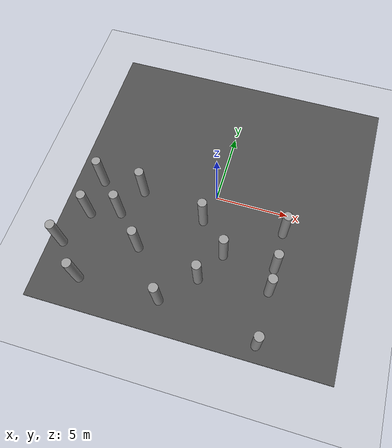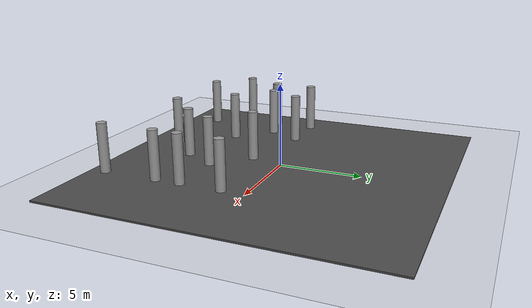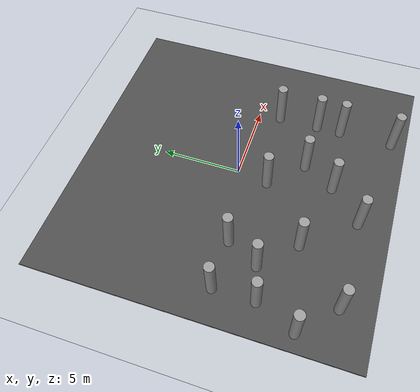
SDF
<sdf version="1.6">
 <world name="default">
  <model name="ground_plane">
   <static>1</static>
   <link name="link">
    <collision name="collision">
     <geometry><plane><normal>0 0 1</normal><size>100 100</size></plane></geometry>
     <surface><friction><ode><mu>100</mu><mu2>50</mu2></ode></friction></surface>
    </collision>
    <visual name="visual">
     <cast_shadows>0</cast_shadows>
     <geometry><plane><normal>0 0 1</normal><size>100 100</size></plane></geometry>
     <material>
      <script><uri>file://media/materials/scripts/gazebo.material</uri><name>Gazebo/Grey</name></script>
     </material>
    </visual>
   </link>
  </model>
  <model name="asphalt_plane">
   <static>1</static>
   <link name="link">
    <collision name="collision"><geometry><box><size>20 20 0.1</size></box></geometry></collision>
    <visual name="visual">
     <cast_shadows>0</cast_shadows>
     <geometry><box><size>20 20 0.1</size></box></geometry>
     <material>
      <script>
       <uri>model://asphalt_plane/materials/scripts</uri>
       <uri>model://asphalt_plane/materials/textures</uri>
       <name>vrc/asphalt</name>
      </script>
     </material>
    </visual>
   </link>
  </model>
  <model name="Untitled_clone_2">
   <link name="link_1">
    <inertial>
     <mass>1</mass>
     <inertia><ixx>0.145833</ixx><ixy>0</ixy><ixz>0</ixz><iyy>0.145833</iyy><iyz>0</iyz><izz>0.125</izz></inertia>
    </inertial>
    <visual name="visual">
     <geometry><cylinder><radius>0.3</radius><length>5</length></cylinder></geometry>
     <material>
      <lighting>1</lighting>
      <script><uri>file://media/materials/scripts/gazebo.material</uri><name>Gazebo/Grey</name></script>
      <shader type="pixel"><normal_map>__default__</normal_map></shader>
      <ambient>0.3 0.3 0.3 1</ambient>
      <diffuse>0.7 0.7 0.7 1</diffuse>
      <specular>0.01 0.01 0.01 1</specular>
      <emissive>0 0 0 1</emissive>
     </material>
    </visual>
    <collision name="collision">
     <geometry><cylinder><radius>0.5</radius><length>1</length></cylinder></geometry>
     <surface>
      <friction>
       <ode><mu>1</mu><mu2>1</mu2><fdir1>0 0 0</fdir1><slip1>0</slip1><slip2>0</slip2></ode>
       <torsional>
        <coefficient>1</coefficient>
        <patch_radius>0</patch_radius>
        <surface_radius>0</surface_radius>
        <use_patch_radius>1</use_patch_radius>
        <ode><slip>0</slip></ode>
       </torsional>
      </friction>
      <bounce><restitution_coefficient>0</restitution_coefficient><threshold>1e+06</threshold></bounce>
      <contact>
       <collide_without_contact>0</collide_without_contact>
       <collide_without_contact_bitmask>1</collide_without_contact_bitmask>
       <collide_bitmask>1</collide_bitmask>
       <ode>
        <soft_cfm>0</soft_cfm>
        <soft_erp>0.2</soft_erp>
        <kp>1e+13</kp>
        <kd>1</kd>
        <max_vel>0.01</max_vel>
        <min_depth>0</min_depth>
       </ode>
       <bullet>
        <split_impulse>1</split_impulse>
        <split_impulse_penetration_threshold>-0.01</split_impulse_penetration_threshold>
        <soft_cfm>0</soft_cfm>
        <soft_erp>0.2</soft_erp>
        <kp>1e+13</kp>
        <kd>1</kd>
       </bullet>
      </contact>
     </surface>
    </collision>
   </link>
   <static>0</static>
   <pose>4.99925 -1.41702 0.549996 1e-06 8e-06 0.013483</pose>
  </model>
  <model name="Untitled_clone_3">
   <link name="link_1">
    <inertial>
     <mass>1</mass>
     <inertia><ixx>0.145833</ixx><ixy>0</ixy><ixz>0</ixz><iyy>0.145833</iyy><iyz>0</iyz><izz>0.125</izz></inertia>
    </inertial>
    <visual name="visual">
     <geometry><cylinder><radius>0.3</radius><length>5</length></cylinder></geometry>
     <material>
      <lighting>1</lighting>
      <script><uri>file://media/materials/scripts/gazebo.material</uri><name>Gazebo/Grey</name></script>
      <shader type="pixel"><normal_map>__default__</normal_map></shader>
      <ambient>0.3 0.3 0.3 1</ambient>
      <diffuse>0.7 0.7 0.7 1</diffuse>
      <specular>0.01 0.01 0.01 1</specular>
      <emissive>0 0 0 1</emissive>
     </material>
    </visual>
    <collision name="collision">
     <geometry><cylinder><radius>0.5</radius><length>1</length></cylinder></geometry>
     <surface>
      <friction>
       <ode><mu>1</mu><mu2>1</mu2><fdir1>0 0 0</fdir1><slip1>0</slip1><slip2>0</slip2></ode>
       <torsional>
        <coefficient>1</coefficient>
        <patch_radius>0</patch_radius>
        <surface_radius>0</surface_radius>
        <use_patch_radius>1</use_patch_radius>
        <ode><slip>0</slip></ode>
       </torsional>
      </friction>
      <bounce><restitution_coefficient>0</restitution_coefficient><threshold>1e+06</threshold></bounce>
      <contact>
       <collide_without_contact>0</collide_without_contact>
       <collide_without_contact_bitmask>1</collide_without_contact_bitmask>
       <collide_bitmask>1</collide_bitmask>
       <ode>
        <soft_cfm>0</soft_cfm>
        <soft_erp>0.2</soft_erp>
        <kp>1e+13</kp>
        <kd>1</kd>
        <max_vel>0.01</max_vel>
        <min_depth>0</min_depth>
       </ode>
       <bullet>
        <split_impulse>1</split_impulse>
        <split_impulse_penetration_threshold>-0.01</split_impulse_penetration_threshold>
        <soft_cfm>0</soft_cfm>
        <soft_erp>0.2</soft_erp>
        <kp>1e+13</kp>
        <kd>1</kd>
       </bullet>
      </contact>
     </surface>
    </collision>
   </link>
   <static>0</static>
   <pose>-0.40703 -2.00042 0.549974 -3e-06 -6.9e-05 0.013907</pose>
  </model>
  <model name="Untitled_clone_4">
   <link name="link_1">
    <inertial>
     <mass>1</mass>
     <inertia><ixx>0.145833</ixx><ixy>0</ixy><ixz>0</ixz><iyy>0.145833</iyy><iyz>0</iyz><izz>0.125</izz></inertia>
    </inertial>
    <visual name="visual">
     <geometry><cylinder><radius>0.3</radius><length>5</length></cylinder></geometry>
     <material>
      <lighting>1</lighting>
      <script><uri>file://media/materials/scripts/gazebo.material</uri><name>Gazebo/Grey</name></script>
      <shader type="pixel"><normal_map>__default__</normal_map></shader>
      <ambient>0.3 0.3 0.3 1</ambient>
      <diffuse>0.7 0.7 0.7 1</diffuse>
      <specular>0.01 0.01 0.01 1</specular>
      <emissive>0 0 0 1</emissive>
     </material>
    </visual>
    <collision name="collision">
     <geometry><cylinder><radius>0.5</radius><length>1</length></cylinder></geometry>
     <surface>
      <friction>
       <ode><mu>1</mu><mu2>1</mu2><fdir1>0 0 0</fdir1><slip1>0</slip1><slip2>0</slip2></ode>
       <torsional>
        <coefficient>1</coefficient>
        <patch_radius>0</patch_radius>
        <surface_radius>0</surface_radius>
        <use_patch_radius>1</use_patch_radius>
        <ode><slip>0</slip></ode>
       </torsional>
      </friction>
      <bounce><restitution_coefficient>0</restitution_coefficient><threshold>1e+06</threshold></bounce>
      <contact>
       <collide_without_contact>0</collide_without_contact>
       <collide_without_contact_bitmask>1</collide_without_contact_bitmask>
       <collide_bitmask>1</collide_bitmask>
       <ode>
        <soft_cfm>0</soft_cfm>
        <soft_erp>0.2</soft_erp>
        <kp>1e+13</kp>
        <kd>1</kd>
        <max_vel>0.01</max_vel>
        <min_depth>0</min_depth>
       </ode>
       <bullet>
        <split_impulse>1</split_impulse>
        <split_impulse_penetration_threshold>-0.01</split_impulse_penetration_threshold>
        <soft_cfm>0</soft_cfm>
        <soft_erp>0.2</soft_erp>
        <kp>1e+13</kp>
        <kd>1</kd>
       </bullet>
      </contact>
     </surface>
    </collision>
   </link>
   <static>0</static>
   <pose>-4.00047 -5.00044 0.550034 -1.2e-05 -6.8e-05 0.013936</pose>
  </model>
  <model name="Untitled_clone_5">
   <link name="link_1">
    <inertial>
     <mass>1</mass>
     <inertia><ixx>0.145833</ixx><ixy>0</ixy><ixz>0</ixz><iyy>0.145833</iyy><iyz>0</iyz><izz>0.125</izz></inertia>
    </inertial>
    <visual name="visual">
     <geometry><cylinder><radius>0.3</radius><length>5</length></cylinder></geometry>
     <material>
      <lighting>1</lighting>
      <script><uri>file://media/materials/scripts/gazebo.material</uri><name>Gazebo/Grey</name></script>
      <shader type="pixel"><normal_map>__default__</normal_map></shader>
      <ambient>0.3 0.3 0.3 1</ambient>
      <diffuse>0.7 0.7 0.7 1</diffuse>
      <specular>0.01 0.01 0.01 1</specular>
      <emissive>0 0 0 1</emissive>
     </material>
    </visual>
    <collision name="collision">
     <geometry><cylinder><radius>0.5</radius><length>1</length></cylinder></geometry>
     <surface>
      <friction>
       <ode><mu>1</mu><mu2>1</mu2><fdir1>0 0 0</fdir1><slip1>0</slip1><slip2>0</slip2></ode>
       <torsional>
        <coefficient>1</coefficient>
        <patch_radius>0</patch_radius>
        <surface_radius>0</surface_radius>
        <use_patch_radius>1</use_patch_radius>
        <ode><slip>0</slip></ode>
       </torsional>
      </friction>
      <bounce><restitution_coefficient>0</restitution_coefficient><threshold>1e+06</threshold></bounce>
      <contact>
       <collide_without_contact>0</collide_without_contact>
       <collide_without_contact_bitmask>1</collide_without_contact_bitmask>
       <collide_bitmask>1</collide_bitmask>
       <ode>
        <soft_cfm>0</soft_cfm>
        <soft_erp>0.2</soft_erp>
        <kp>1e+13</kp>
        <kd>1</kd>
        <max_vel>0.01</max_vel>
        <min_depth>0</min_depth>
       </ode>
       <bullet>
        <split_impulse>1</split_impulse>
        <split_impulse_penetration_threshold>-0.01</split_impulse_penetration_threshold>
        <soft_cfm>0</soft_cfm>
        <soft_erp>0.2</soft_erp>
        <kp>1e+13</kp>
        <kd>1</kd>
       </bullet>
      </contact>
     </surface>
    </collision>
   </link>
   <static>0</static>
   <pose>-5.99993 -3.00017 0.549912 -5.3e-05 -2.4e-05 0.014778</pose>
  </model>
  <model name="Untitled_clone_10">
   <link name="link_1">
    <inertial>
     <mass>1</mass>
     <inertia><ixx>0.145833</ixx><ixy>0</ixy><ixz>0</ixz><iyy>0.145833</iyy><iyz>0</iyz><izz>0.125</izz></inertia>
    </inertial>
    <visual name="visual">
     <geometry><cylinder><radius>0.3</radius><length>5</length></cylinder></geometry>
     <material>
      <lighting>1</lighting>
      <script><uri>file://media/materials/scripts/gazebo.material</uri><name>Gazebo/Grey</name></script>
      <shader type="pixel"><normal_map>__default__</normal_map></shader>
      <ambient>0.3 0.3 0.3 1</ambient>
      <diffuse>0.7 0.7 0.7 1</diffuse>
      <specular>0.01 0.01 0.01 1</specular>
      <emissive>0 0 0 1</emissive>
     </material>
    </visual>
    <collision name="collision">
     <geometry><cylinder><radius>0.5</radius><length>1</length></cylinder></geometry>
     <surface>
      <friction>
       <ode><mu>1</mu><mu2>1</mu2><fdir1>0 0 0</fdir1><slip1>0</slip1><slip2>0</slip2></ode>
       <torsional>
        <coefficient>1</coefficient>
        <patch_radius>0</patch_radius>
        <surface_radius>0</surface_radius>
        <use_patch_radius>1</use_patch_radius>
        <ode><slip>0</slip></ode>
       </torsional>
      </friction>
      <bounce><restitution_coefficient>0</restitution_coefficient><threshold>1e+06</threshold></bounce>
      <contact>
       <collide_without_contact>0</collide_without_contact>
       <collide_without_contact_bitmask>1</collide_without_contact_bitmask>
       <collide_bitmask>1</collide_bitmask>
       <ode>
        <soft_cfm>0</soft_cfm>
        <soft_erp>0.2</soft_erp>
        <kp>1e+13</kp>
        <kd>1</kd>
        <max_vel>0.01</max_vel>
        <min_depth>0</min_depth>
       </ode>
       <bullet>
        <split_impulse>1</split_impulse>
        <split_impulse_penetration_threshold>-0.01</split_impulse_penetration_threshold>
        <soft_cfm>0</soft_cfm>
        <soft_erp>0.2</soft_erp>
        <kp>1e+13</kp>
        <kd>1</kd>
       </bullet>
      </contact>
     </surface>
    </collision>
   </link>
   <static>0</static>
   <pose>-5.00041 -1.00041 0.550031 -1.1e-05 -6.2e-05 0.013816</pose>
  </model>
  <model name="Untitled_clone_11">
   <link name="link_1">
    <inertial>
     <mass>1</mass>
     <inertia><ixx>0.145833</ixx><ixy>0</ixy><ixz>0</ixz><iyy>0.145833</iyy><iyz>0</iyz><izz>0.125</izz></inertia>
    </inertial>
    <visual name="visual">
     <geometry><cylinder><radius>0.3</radius><length>5</length></cylinder></geometry>
     <material>
      <lighting>1</lighting>
      <script><uri>file://media/materials/scripts/gazebo.material</uri><name>Gazebo/Grey</name></script>
      <shader type="pixel"><normal_map>__default__</normal_map></shader>
      <ambient>0.3 0.3 0.3 1</ambient>
      <diffuse>0.7 0.7 0.7 1</diffuse>
      <specular>0.01 0.01 0.01 1</specular>
      <emissive>0 0 0 1</emissive>
     </material>
    </visual>
    <collision name="collision">
     <geometry><cylinder><radius>0.5</radius><length>1</length></cylinder></geometry>
     <surface>
      <friction>
       <ode><mu>1</mu><mu2>1</mu2><fdir1>0 0 0</fdir1><slip1>0</slip1><slip2>0</slip2></ode>
       <torsional>
        <coefficient>1</coefficient>
        <patch_radius>0</patch_radius>
        <surface_radius>0</surface_radius>
        <use_patch_radius>1</use_patch_radius>
        <ode><slip>0</slip></ode>
       </torsional>
      </friction>
      <bounce><restitution_coefficient>0</restitution_coefficient><threshold>1e+06</threshold></bounce>
      <contact>
       <collide_without_contact>0</collide_without_contact>
       <collide_without_contact_bitmask>1</collide_without_contact_bitmask>
       <collide_bitmask>1</collide_bitmask>
       <ode>
        <soft_cfm>0</soft_cfm>
        <soft_erp>0.2</soft_erp>
        <kp>1e+13</kp>
        <kd>1</kd>
        <max_vel>0.01</max_vel>
        <min_depth>0</min_depth>
       </ode>
       <bullet>
        <split_impulse>1</split_impulse>
        <split_impulse_penetration_threshold>-0.01</split_impulse_penetration_threshold>
        <soft_cfm>0</soft_cfm>
        <soft_erp>0.2</soft_erp>
        <kp>1e+13</kp>
        <kd>1</kd>
       </bullet>
      </contact>
     </surface>
    </collision>
   </link>
   <static>0</static>
   <pose>0.432623 -6.0002 0.549958 1e-05 8.4e-05 0.013612</pose>
  </model>
  <model name="Untitled_clone_12">
   <link name="link_1">
    <inertial>
     <mass>1</mass>
     <inertia><ixx>0.145833</ixx><ixy>0</ixy><ixz>0</ixz><iyy>0.145833</iyy><iyz>0</iyz><izz>0.125</izz></inertia>
    </inertial>
    <visual name="visual">
     <geometry><cylinder><radius>0.3</radius><length>5</length></cylinder></geometry>
     <material>
      <lighting>1</lighting>
      <script><uri>file://media/materials/scripts/gazebo.material</uri><name>Gazebo/Grey</name></script>
      <shader type="pixel"><normal_map>__default__</normal_map></shader>
      <ambient>0.3 0.3 0.3 1</ambient>
      <diffuse>0.7 0.7 0.7 1</diffuse>
      <specular>0.01 0.01 0.01 1</specular>
      <emissive>0 0 0 1</emissive>
     </material>
    </visual>
    <collision name="collision">
     <geometry><cylinder><radius>0.5</radius><length>1</length></cylinder></geometry>
     <surface>
      <friction>
       <ode><mu>1</mu><mu2>1</mu2><fdir1>0 0 0</fdir1><slip1>0</slip1><slip2>0</slip2></ode>
       <torsional>
        <coefficient>1</coefficient>
        <patch_radius>0</patch_radius>
        <surface_radius>0</surface_radius>
        <use_patch_radius>1</use_patch_radius>
        <ode><slip>0</slip></ode>
       </torsional>
      </friction>
      <bounce><restitution_coefficient>0</restitution_coefficient><threshold>1e+06</threshold></bounce>
      <contact>
       <collide_without_contact>0</collide_without_contact>
       <collide_without_contact_bitmask>1</collide_without_contact_bitmask>
       <collide_bitmask>1</collide_bitmask>
       <ode>
        <soft_cfm>0</soft_cfm>
        <soft_erp>0.2</soft_erp>
        <kp>1e+13</kp>
        <kd>1</kd>
        <max_vel>0.01</max_vel>
        <min_depth>0</min_depth>
       </ode>
       <bullet>
        <split_impulse>1</split_impulse>
        <split_impulse_penetration_threshold>-0.01</split_impulse_penetration_threshold>
        <soft_cfm>0</soft_cfm>
        <soft_erp>0.2</soft_erp>
        <kp>1e+13</kp>
        <kd>1</kd>
       </bullet>
      </contact>
     </surface>
    </collision>
   </link>
   <static>0</static>
   <pose>4.99941 -5.57312 0.549886 -2e-06 -4e-06 0.013416</pose>
  </model>
  <model name="Untitled_clone_13">
   <link name="link_1">
    <inertial>
     <mass>1</mass>
     <inertia><ixx>0.145833</ixx><ixy>0</ixy><ixz>0</ixz><iyy>0.145833</iyy><iyz>0</iyz><izz>0.125</izz></inertia>
    </inertial>
    <visual name="visual">
     <geometry><cylinder><radius>0.3</radius><length>5</length></cylinder></geometry>
     <material>
      <lighting>1</lighting>
      <script><uri>file://media/materials/scripts/gazebo.material</uri><name>Gazebo/Grey</name></script>
      <shader type="pixel"><normal_map>__default__</normal_map></shader>
      <ambient>0.3 0.3 0.3 1</ambient>
      <diffuse>0.7 0.7 0.7 1</diffuse>
      <specular>0.01 0.01 0.01 1</specular>
      <emissive>0 0 0 1</emissive>
     </material>
    </visual>
    <collision name="collision">
     <geometry><cylinder><radius>0.5</radius><length>1</length></cylinder></geometry>
     <surface>
      <friction>
       <ode><mu>1</mu><mu2>1</mu2><fdir1>0 0 0</fdir1><slip1>0</slip1><slip2>0</slip2></ode>
       <torsional>
        <coefficient>1</coefficient>
        <patch_radius>0</patch_radius>
        <surface_radius>0</surface_radius>
        <use_patch_radius>1</use_patch_radius>
        <ode><slip>0</slip></ode>
       </torsional>
      </friction>
      <bounce><restitution_coefficient>0</restitution_coefficient><threshold>1e+06</threshold></bounce>
      <contact>
       <collide_without_contact>0</collide_without_contact>
       <collide_without_contact_bitmask>1</collide_without_contact_bitmask>
       <collide_bitmask>1</collide_bitmask>
       <ode>
        <soft_cfm>0</soft_cfm>
        <soft_erp>0.2</soft_erp>
        <kp>1e+13</kp>
        <kd>1</kd>
        <max_vel>0.01</max_vel>
        <min_depth>0</min_depth>
       </ode>
       <bullet>
        <split_impulse>1</split_impulse>
        <split_impulse_penetration_threshold>-0.01</split_impulse_penetration_threshold>
        <soft_cfm>0</soft_cfm>
        <soft_erp>0.2</soft_erp>
        <kp>1e+13</kp>
        <kd>1</kd>
       </bullet>
      </contact>
     </surface>
    </collision>
   </link>
   <static>0</static>
   <pose>4.99936 -4.00021 0.550034 -6.5e-05 -2.2e-05 0.013137</pose>
  </model>
  <model name="Untitled_clone_18">
   <link name="link_1">
    <inertial>
     <mass>1</mass>
     <inertia><ixx>0.145833</ixx><ixy>0</ixy><ixz>0</ixz><iyy>0.145833</iyy><iyz>0</iyz><izz>0.125</izz></inertia>
    </inertial>
    <visual name="visual">
     <geometry><cylinder><radius>0.3</radius><length>5</length></cylinder></geometry>
     <material>
      <lighting>1</lighting>
      <script><uri>file://media/materials/scripts/gazebo.material</uri><name>Gazebo/Grey</name></script>
      <shader type="pixel"><normal_map>__default__</normal_map></shader>
      <ambient>0.3 0.3 0.3 1</ambient>
      <diffuse>0.7 0.7 0.7 1</diffuse>
      <specular>0.01 0.01 0.01 1</specular>
      <emissive>0 0 0 1</emissive>
     </material>
    </visual>
    <collision name="collision">
     <geometry><cylinder><radius>0.5</radius><length>1</length></cylinder></geometry>
     <surface>
      <friction>
       <ode><mu>1</mu><mu2>1</mu2><fdir1>0 0 0</fdir1><slip1>0</slip1><slip2>0</slip2></ode>
       <torsional>
        <coefficient>1</coefficient>
        <patch_radius>0</patch_radius>
        <surface_radius>0</surface_radius>
        <use_patch_radius>1</use_patch_radius>
        <ode><slip>0</slip></ode>
       </torsional>
      </friction>
      <bounce><restitution_coefficient>0</restitution_coefficient><threshold>1e+06</threshold></bounce>
      <contact>
       <collide_without_contact>0</collide_without_contact>
       <collide_without_contact_bitmask>1</collide_without_contact_bitmask>
       <collide_bitmask>1</collide_bitmask>
       <ode>
        <soft_cfm>0</soft_cfm>
        <soft_erp>0.2</soft_erp>
        <kp>1e+13</kp>
        <kd>1</kd>
        <max_vel>0.01</max_vel>
        <min_depth>0</min_depth>
       </ode>
       <bullet>
        <split_impulse>1</split_impulse>
        <split_impulse_penetration_threshold>-0.01</split_impulse_penetration_threshold>
        <soft_cfm>0</soft_cfm>
        <soft_erp>0.2</soft_erp>
        <kp>1e+13</kp>
        <kd>1</kd>
       </bullet>
      </contact>
     </surface>
    </collision>
   </link>
   <static>0</static>
   <pose>-7.99995 -3.57088 0.549989 -3e-06 2.4e-05 0.014519</pose>
  </model>
  <model name="Untitled_clone_19">
   <link name="link_1">
    <inertial>
     <mass>1</mass>
     <inertia><ixx>0.145833</ixx><ixy>0</ixy><ixz>0</ixz><iyy>0.145833</iyy><iyz>0</iyz><izz>0.125</izz></inertia>
    </inertial>
    <visual name="visual">
     <geometry><cylinder><radius>0.3</radius><length>5</length></cylinder></geometry>
     <material>
      <lighting>1</lighting>
      <script><uri>file://media/materials/scripts/gazebo.material</uri><name>Gazebo/Grey</name></script>
      <shader type="pixel"><normal_map>__default__</normal_map></shader>
      <ambient>0.3 0.3 0.3 1</ambient>
      <diffuse>0.7 0.7 0.7 1</diffuse>
      <specular>0.01 0.01 0.01 1</specular>
      <emissive>0 0 0 1</emissive>
     </material>
    </visual>
    <collision name="collision">
     <geometry><cylinder><radius>0.5</radius><length>1</length></cylinder></geometry>
     <surface>
      <friction>
       <ode><mu>1</mu><mu2>1</mu2><fdir1>0 0 0</fdir1><slip1>0</slip1><slip2>0</slip2></ode>
       <torsional>
        <coefficient>1</coefficient>
        <patch_radius>0</patch_radius>
        <surface_radius>0</surface_radius>
        <use_patch_radius>1</use_patch_radius>
        <ode><slip>0</slip></ode>
       </torsional>
      </friction>
      <bounce><restitution_coefficient>0</restitution_coefficient><threshold>1e+06</threshold></bounce>
      <contact>
       <collide_without_contact>0</collide_without_contact>
       <collide_without_contact_bitmask>1</collide_without_contact_bitmask>
       <collide_bitmask>1</collide_bitmask>
       <ode>
        <soft_cfm>0</soft_cfm>
        <soft_erp>0.2</soft_erp>
        <kp>1e+13</kp>
        <kd>1</kd>
        <max_vel>0.01</max_vel>
        <min_depth>0</min_depth>
       </ode>
       <bullet>
        <split_impulse>1</split_impulse>
        <split_impulse_penetration_threshold>-0.01</split_impulse_penetration_threshold>
        <soft_cfm>0</soft_cfm>
        <soft_erp>0.2</soft_erp>
        <kp>1e+13</kp>
        <kd>1</kd>
       </bullet>
      </contact>
     </surface>
    </collision>
   </link>
   <static>0</static>
   <pose>-7.00004 -8.00006 0.549917 -3.9e-05 -5.3e-05 0.014521</pose>
  </model>
  <model name="Untitled_clone_20">
   <link name="link_1">
    <inertial>
     <mass>1</mass>
     <inertia><ixx>0.145833</ixx><ixy>0</ixy><ixz>0</ixz><iyy>0.145833</iyy><iyz>0</iyz><izz>0.125</izz></inertia>
    </inertial>
    <visual name="visual">
     <geometry><cylinder><radius>0.3</radius><length>5</length></cylinder></geometry>
     <material>
      <lighting>1</lighting>
      <script><uri>file://media/materials/scripts/gazebo.material</uri><name>Gazebo/Grey</name></script>
      <shader type="pixel"><normal_map>__default__</normal_map></shader>
      <ambient>0.3 0.3 0.3 1</ambient>
      <diffuse>0.7 0.7 0.7 1</diffuse>
      <specular>0.01 0.01 0.01 1</specular>
      <emissive>0 0 0 1</emissive>
     </material>
    </visual>
    <collision name="collision">
     <geometry><cylinder><radius>0.5</radius><length>1</length></cylinder></geometry>
     <surface>
      <friction>
       <ode><mu>1</mu><mu2>1</mu2><fdir1>0 0 0</fdir1><slip1>0</slip1><slip2>0</slip2></ode>
       <torsional>
        <coefficient>1</coefficient>
        <patch_radius>0</patch_radius>
        <surface_radius>0</surface_radius>
        <use_patch_radius>1</use_patch_radius>
        <ode><slip>0</slip></ode>
       </torsional>
      </friction>
      <bounce><restitution_coefficient>0</restitution_coefficient><threshold>1e+06</threshold></bounce>
      <contact>
       <collide_without_contact>0</collide_without_contact>
       <collide_without_contact_bitmask>1</collide_without_contact_bitmask>
       <collide_bitmask>1</collide_bitmask>
       <ode>
        <soft_cfm>0</soft_cfm>
        <soft_erp>0.2</soft_erp>
        <kp>1e+13</kp>
        <kd>1</kd>
        <max_vel>0.01</max_vel>
        <min_depth>0</min_depth>
       </ode>
       <bullet>
        <split_impulse>1</split_impulse>
        <split_impulse_penetration_threshold>-0.01</split_impulse_penetration_threshold>
        <soft_cfm>0</soft_cfm>
        <soft_erp>0.2</soft_erp>
        <kp>1e+13</kp>
        <kd>1</kd>
       </bullet>
      </contact>
     </surface>
    </collision>
   </link>
   <static>0</static>
   <pose>-7.99998 -1.00005 0.550039 -1.8e-05 -7.6e-05 0.014466</pose>
  </model>
  <model name="Untitled_clone_21">
   <link name="link_1">
    <inertial>
     <mass>1</mass>
     <inertia><ixx>0.145833</ixx><ixy>0</ixy><ixz>0</ixz><iyy>0.145833</iyy><iyz>0</iyz><izz>0.125</izz></inertia>
    </inertial>
    <visual name="visual">
     <geometry><cylinder><radius>0.3</radius><length>5</length></cylinder></geometry>
     <material>
      <lighting>1</lighting>
      <script><uri>file://media/materials/scripts/gazebo.material</uri><name>Gazebo/Grey</name></script>
      <shader type="pixel"><normal_map>__default__</normal_map></shader>
      <ambient>0.3 0.3 0.3 1</ambient>
      <diffuse>0.7 0.7 0.7 1</diffuse>
      <specular>0.01 0.01 0.01 1</specular>
      <emissive>0 0 0 1</emissive>
     </material>
    </visual>
    <collision name="collision">
     <geometry><cylinder><radius>0.5</radius><length>1</length></cylinder></geometry>
     <surface>
      <friction>
       <ode><mu>1</mu><mu2>1</mu2><fdir1>0 0 0</fdir1><slip1>0</slip1><slip2>0</slip2></ode>
       <torsional>
        <coefficient>1</coefficient>
        <patch_radius>0</patch_radius>
        <surface_radius>0</surface_radius>
        <use_patch_radius>1</use_patch_radius>
        <ode><slip>0</slip></ode>
       </torsional>
      </friction>
      <bounce><restitution_coefficient>0</restitution_coefficient><threshold>1e+06</threshold></bounce>
      <contact>
       <collide_without_contact>0</collide_without_contact>
       <collide_without_contact_bitmask>1</collide_without_contact_bitmask>
       <collide_bitmask>1</collide_bitmask>
       <ode>
        <soft_cfm>0</soft_cfm>
        <soft_erp>0.2</soft_erp>
        <kp>1e+13</kp>
        <kd>1</kd>
        <max_vel>0.01</max_vel>
        <min_depth>0</min_depth>
       </ode>
       <bullet>
        <split_impulse>1</split_impulse>
        <split_impulse_penetration_threshold>-0.01</split_impulse_penetration_threshold>
        <soft_cfm>0</soft_cfm>
        <soft_erp>0.2</soft_erp>
        <kp>1e+13</kp>
        <kd>1</kd>
       </bullet>
      </contact>
     </surface>
    </collision>
   </link>
   <static>0</static>
   <pose>4.99993 -9.00012 0.549985 2e-06 3.1e-05 0.014343</pose>
  </model>
  <model name="Untitled_clone_22">
   <link name="link_1">
    <inertial>
     <mass>1</mass>
     <inertia><ixx>0.145833</ixx><ixy>0</ixy><ixz>0</ixz><iyy>0.145833</iyy><iyz>0</iyz><izz>0.125</izz></inertia>
    </inertial>
    <visual name="visual">
     <geometry><cylinder><radius>0.3</radius><length>5</length></cylinder></geometry>
     <material>
      <lighting>1</lighting>
      <script><uri>file://media/materials/scripts/gazebo.material</uri><name>Gazebo/Grey</name></script>
      <shader type="pixel"><normal_map>__default__</normal_map></shader>
      <ambient>0.3 0.3 0.3 1</ambient>
      <diffuse>0.7 0.7 0.7 1</diffuse>
      <specular>0.01 0.01 0.01 1</specular>
      <emissive>0 0 0 1</emissive>
     </material>
    </visual>
    <collision name="collision">
     <geometry><cylinder><radius>0.5</radius><length>1</length></cylinder></geometry>
     <surface>
      <friction>
       <ode><mu>1</mu><mu2>1</mu2><fdir1>0 0 0</fdir1><slip1>0</slip1><slip2>0</slip2></ode>
       <torsional>
        <coefficient>1</coefficient>
        <patch_radius>0</patch_radius>
        <surface_radius>0</surface_radius>
        <use_patch_radius>1</use_patch_radius>
        <ode><slip>0</slip></ode>
       </torsional>
      </friction>
      <bounce><restitution_coefficient>0</restitution_coefficient><threshold>1e+06</threshold></bounce>
      <contact>
       <collide_without_contact>0</collide_without_contact>
       <collide_without_contact_bitmask>1</collide_without_contact_bitmask>
       <collide_bitmask>1</collide_bitmask>
       <ode>
        <soft_cfm>0</soft_cfm>
        <soft_erp>0.2</soft_erp>
        <kp>1e+13</kp>
        <kd>1</kd>
        <max_vel>0.01</max_vel>
        <min_depth>0</min_depth>
       </ode>
       <bullet>
        <split_impulse>1</split_impulse>
        <split_impulse_penetration_threshold>-0.01</split_impulse_penetration_threshold>
        <soft_cfm>0</soft_cfm>
        <soft_erp>0.2</soft_erp>
        <kp>1e+13</kp>
        <kd>1</kd>
       </bullet>
      </contact>
     </surface>
    </collision>
   </link>
   <static>0</static>
   <pose>-1.5604 -8.00013 0.550012 -8e-06 3e-05 0.014075</pose>
  </model>
  <model name="Untitled_clone_23">
   <link name="link_1">
    <inertial>
     <mass>1</mass>
     <inertia><ixx>0.145833</ixx><ixy>0</ixy><ixz>0</ixz><iyy>0.145833</iyy><iyz>0</iyz><izz>0.125</izz></inertia>
    </inertial>
    <visual name="visual">
     <geometry><cylinder><radius>0.3</radius><length>5</length></cylinder></geometry>
     <material>
      <lighting>1</lighting>
      <script><uri>file://media/materials/scripts/gazebo.material</uri><name>Gazebo/Grey</name></script>
      <shader type="pixel"><normal_map>__default__</normal_map></shader>
      <ambient>0.3 0.3 0.3 1</ambient>
      <diffuse>0.7 0.7 0.7 1</diffuse>
      <specular>0.01 0.01 0.01 1</specular>
      <emissive>0 0 0 1</emissive>
     </material>
    </visual>
    <collision name="collision">
     <geometry><cylinder><radius>0.5</radius><length>1</length></cylinder></geometry>
     <surface>
      <friction>
       <ode><mu>1</mu><mu2>1</mu2><fdir1>0 0 0</fdir1><slip1>0</slip1><slip2>0</slip2></ode>
       <torsional>
        <coefficient>1</coefficient>
        <patch_radius>0</patch_radius>
        <surface_radius>0</surface_radius>
        <use_patch_radius>1</use_patch_radius>
        <ode><slip>0</slip></ode>
       </torsional>
      </friction>
      <bounce><restitution_coefficient>0</restitution_coefficient><threshold>1e+06</threshold></bounce>
      <contact>
       <collide_without_contact>0</collide_without_contact>
       <collide_without_contact_bitmask>1</collide_without_contact_bitmask>
       <collide_bitmask>1</collide_bitmask>
       <ode>
        <soft_cfm>0</soft_cfm>
        <soft_erp>0.2</soft_erp>
        <kp>1e+13</kp>
        <kd>1</kd>
        <max_vel>0.01</max_vel>
        <min_depth>0</min_depth>
       </ode>
       <bullet>
        <split_impulse>1</split_impulse>
        <split_impulse_penetration_threshold>-0.01</split_impulse_penetration_threshold>
        <soft_cfm>0</soft_cfm>
        <soft_erp>0.2</soft_erp>
        <kp>1e+13</kp>
        <kd>1</kd>
       </bullet>
      </contact>
     </surface>
    </collision>
   </link>
   <static>0</static>
   <pose>1.55995 -4.00012 0.549965 7.5e-05 9e-06 0.01397</pose>
  </model>
  <model name="Untitled_clone_24">
   <link name="link_1">
    <inertial>
     <mass>1</mass>
     <inertia><ixx>0.145833</ixx><ixy>0</ixy><ixz>0</ixz><iyy>0.145833</iyy><iyz>0</iyz><izz>0.125</izz></inertia>
    </inertial>
    <visual name="visual">
     <geometry><cylinder><radius>0.3</radius><length>5</length></cylinder></geometry>
     <material>
      <lighting>1</lighting>
      <script><uri>file://media/materials/scripts/gazebo.material</uri><name>Gazebo/Grey</name></script>
      <shader type="pixel"><normal_map>__default__</normal_map></shader>
      <ambient>0.3 0.3 0.3 1</ambient>
      <diffuse>0.7 0.7 0.7 1</diffuse>
      <specular>0.01 0.01 0.01 1</specular>
      <emissive>0 0 0 1</emissive>
     </material>
    </visual>
    <collision name="collision">
     <geometry><cylinder><radius>0.5</radius><length>1</length></cylinder></geometry>
     <surface>
      <friction>
       <ode><mu>1</mu><mu2>1</mu2><fdir1>0 0 0</fdir1><slip1>0</slip1><slip2>0</slip2></ode>
       <torsional>
        <coefficient>1</coefficient>
        <patch_radius>0</patch_radius>
        <surface_radius>0</surface_radius>
        <use_patch_radius>1</use_patch_radius>
        <ode><slip>0</slip></ode>
       </torsional>
      </friction>
      <bounce><restitution_coefficient>0</restitution_coefficient><threshold>1e+06</threshold></bounce>
      <contact>
       <collide_without_contact>0</collide_without_contact>
       <collide_without_contact_bitmask>1</collide_without_contact_bitmask>
       <collide_bitmask>1</collide_bitmask>
       <ode>
        <soft_cfm>0</soft_cfm>
        <soft_erp>0.2</soft_erp>
        <kp>1e+13</kp>
        <kd>1</kd>
        <max_vel>0.01</max_vel>
        <min_depth>0</min_depth>
       </ode>
       <bullet>
        <split_impulse>1</split_impulse>
        <split_impulse_penetration_threshold>-0.01</split_impulse_penetration_threshold>
        <soft_cfm>0</soft_cfm>
        <soft_erp>0.2</soft_erp>
        <kp>1e+13</kp>
        <kd>1</kd>
       </bullet>
      </contact>
     </surface>
    </collision>
   </link>
   <static>0</static>
   <pose>-8.99995 -6.00009 0.549996 -1.2e-05 -2e-06 0.014365</pose>
  </model>
 </world>
</sdf>
